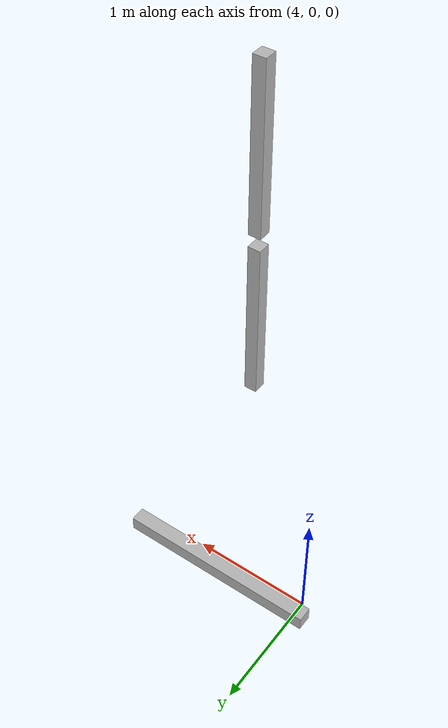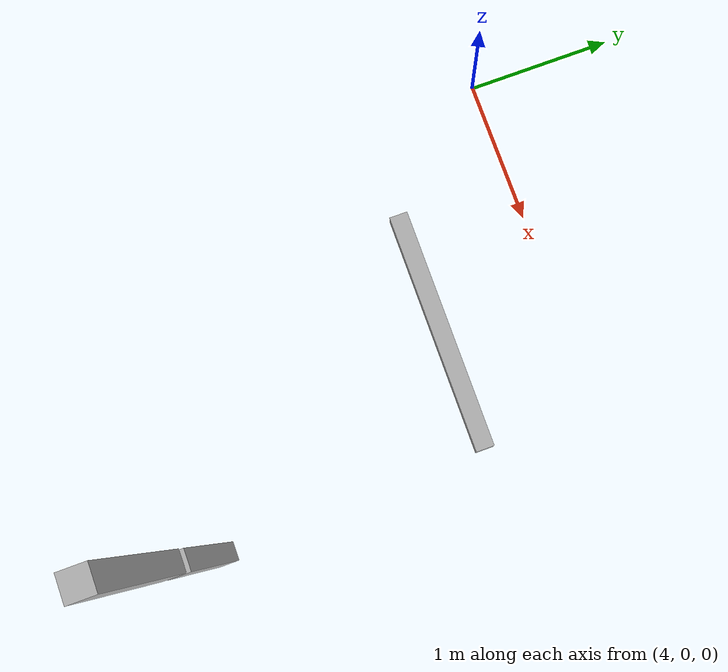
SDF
<sdf version="1.7">
 <world name="default">
  <model name="orthogonal_747_2.000.15_TS">
   <static>1</static>
   <link name="x_link_0_2_5">
    <inertial>
     <mass>1</mass>
     <inertia>
      <ixx>0.166667</ixx>
      <ixy>0</ixy>
      <ixz>0</ixz>
      <iyy>0.166667</iyy>
      <iyz>0</iyz>
      <izz>0.166667</izz>
     </inertia>
    </inertial>
    <pose>11.825 4.3 1.075 0 -0 0</pose>
    <visual name="visual_0">
     <laser_retro>428</laser_retro>
     <geometry><box><size>2 1e-06 0.15</size></box></geometry>
     <material>
      <script><name>Gazebo/Grey</name><uri>file://media/materials/scripts/gazebo.material</uri></script>
      <shader type="pixel"><normal_map>__default__</normal_map></shader>
      <ambient>0.678 0.498 0.659 1</ambient>
      <diffuse>0.7 0.7 0.7 1</diffuse>
      <specular>0.01 0.01 0.01 1</specular>
      <emissive>0 0 0 1</emissive>
     </material>
     <pose>0 -0.075 0 0 -0 0</pose>
     <transparency>1</transparency>
    </visual>
    <visual name="visual_1">
     <laser_retro>429</laser_retro>
     <geometry><box><size>2 1e-06 0.15</size></box></geometry>
     <material>
      <script><name>Gazebo/Grey</name><uri>file://media/materials/scripts/gazebo.material</uri></script>
      <shader type="pixel"><normal_map>__default__</normal_map></shader>
      <ambient>0.447 0.624 0.812 1</ambient>
      <diffuse>0.7 0.7 0.7 1</diffuse>
      <specular>0.01 0.01 0.01 1</specular>
      <emissive>0 0 0 1</emissive>
     </material>
     <pose>0 0.075 0 0 -0 0</pose>
     <transparency>1</transparency>
    </visual>
    <visual name="visual_2">
     <laser_retro>430</laser_retro>
     <geometry><box><size>2 0.15 1e-06</size></box></geometry>
     <material>
      <script><name>Gazebo/Grey</name><uri>file://media/materials/scripts/gazebo.material</uri></script>
      <shader type="pixel"><normal_map>__default__</normal_map></shader>
      <ambient>0.988 0.686 0.243 1</ambient>
      <diffuse>0.7 0.7 0.7 1</diffuse>
      <specular>0.01 0.01 0.01 1</specular>
      <emissive>0 0 0 1</emissive>
     </material>
     <pose>0 0 -0.075 0 -0 0</pose>
     <transparency>1</transparency>
    </visual>
    <visual name="visual_3">
     <laser_retro>431</laser_retro>
     <geometry><box><size>1e-06 0.15 0.15</size></box></geometry>
     <material>
      <script><name>Gazebo/Grey</name><uri>file://media/materials/scripts/gazebo.material</uri></script>
      <shader type="pixel"><normal_map>__default__</normal_map></shader>
      <ambient>0.988 0.914 0.31 1</ambient>
      <diffuse>0.7 0.7 0.7 1</diffuse>
      <specular>0.01 0.01 0.01 1</specular>
      <emissive>0 0 0 1</emissive>
     </material>
     <pose>1 0 0 0 -0 0</pose>
     <transparency>1</transparency>
    </visual>
    <visual name="visual_4">
     <laser_retro>432</laser_retro>
     <geometry><box><size>2 0.15 1e-06</size></box></geometry>
     <material>
      <script><name>Gazebo/Grey</name><uri>file://media/materials/scripts/gazebo.material</uri></script>
      <shader type="pixel"><normal_map>__default__</normal_map></shader>
      <ambient>0.937 0.161 0.161 1</ambient>
      <diffuse>0.7 0.7 0.7 1</diffuse>
      <specular>0.01 0.01 0.01 1</specular>
      <emissive>0 0 0 1</emissive>
     </material>
     <pose>0 0 0.075 0 -0 0</pose>
     <transparency>1</transparency>
    </visual>
    <visual name="visual_5">
     <laser_retro>433</laser_retro>
     <geometry><box><size>1e-06 0.15 0.15</size></box></geometry>
     <material>
      <script><name>Gazebo/Grey</name><uri>file://media/materials/scripts/gazebo.material</uri></script>
      <shader type="pixel"><normal_map>__default__</normal_map></shader>
      <ambient>0.541 0.886 0.204 1</ambient>
      <diffuse>0.7 0.7 0.7 1</diffuse>
      <specular>0.01 0.01 0.01 1</specular>
      <emissive>0 0 0 1</emissive>
     </material>
     <pose>-1 0 0 0 -0 0</pose>
     <transparency>1</transparency>
    </visual>
    <visual name="visual_texture">
     <geometry><box><size>1.9998 0.149985 0.149985</size></box></geometry>
     <material>
      <script>
       <uri>model://BASE_MODELS/simple_block_v2_textured/materials/scripts</uri>
       <uri>model://BASE_MODELS/simple_block_v2_textured/materials/textures</uri>
       <name>metal</name>
      </script>
     </material>
     <laser_retro>434</laser_retro>
    </visual>
    <collision name="collision">
     <geometry><box><size>2 0.15 0.15</size></box></geometry>
     <surface>
      <friction>
       <ode><mu>1</mu><mu2>1</mu2><fdir1>0 0 0</fdir1><slip1>0</slip1><slip2>0</slip2></ode>
       <torsional>
        <coefficient>1</coefficient>
        <patch_radius>0</patch_radius>
        <surface_radius>0</surface_radius>
        <use_patch_radius>1</use_patch_radius>
        <ode><slip>0</slip></ode>
       </torsional>
      </friction>
      <bounce><restitution_coefficient>0</restitution_coefficient><threshold>1e+06</threshold></bounce>
      <contact>
       <collide_without_contact>0</collide_without_contact>
       <collide_without_contact_bitmask>1</collide_without_contact_bitmask>
       <collide_bitmask>1</collide_bitmask>
       <ode>
        <soft_cfm>0</soft_cfm>
        <soft_erp>0.2</soft_erp>
        <kp>1e+13</kp>
        <kd>1</kd>
        <max_vel>0.01</max_vel>
        <min_depth>0</min_depth>
       </ode>
       <bullet>
        <split_impulse>1</split_impulse>
        <split_impulse_penetration_threshold>-0.01</split_impulse_penetration_threshold>
        <soft_cfm>0</soft_cfm>
        <soft_erp>0.2</soft_erp>
        <kp>1e+13</kp>
        <kd>1</kd>
       </bullet>
      </contact>
     </surface>
    </collision>
   </link>
   <link name="z_link_1_1_6">
    <inertial>
     <mass>1</mass>
     <inertia>
      <ixx>0.166667</ixx>
      <ixy>0</ixy>
      <ixz>0</ixz>
      <iyy>0.166667</iyy>
      <iyz>0</iyz>
      <izz>0.166667</izz>
     </inertia>
    </inertial>
    <pose>12.9 2.15 2.15 0 -0 0</pose>
    <visual name="visual_0">
     <laser_retro>1114</laser_retro>
     <geometry><box><size>0.15 1e-06 2</size></box></geometry>
     <material>
      <script><name>Gazebo/Grey</name><uri>file://media/materials/scripts/gazebo.material</uri></script>
      <shader type="pixel"><normal_map>__default__</normal_map></shader>
      <ambient>0.678 0.498 0.659 1</ambient>
      <diffuse>0.7 0.7 0.7 1</diffuse>
      <specular>0.01 0.01 0.01 1</specular>
      <emissive>0 0 0 1</emissive>
     </material>
     <pose>0 -0.075 0 0 -0 0</pose>
     <transparency>1</transparency>
    </visual>
    <visual name="visual_1">
     <laser_retro>1115</laser_retro>
     <geometry><box><size>0.15 1e-06 2</size></box></geometry>
     <material>
      <script><name>Gazebo/Grey</name><uri>file://media/materials/scripts/gazebo.material</uri></script>
      <shader type="pixel"><normal_map>__default__</normal_map></shader>
      <ambient>0.447 0.624 0.812 1</ambient>
      <diffuse>0.7 0.7 0.7 1</diffuse>
      <specular>0.01 0.01 0.01 1</specular>
      <emissive>0 0 0 1</emissive>
     </material>
     <pose>0 0.075 0 0 -0 0</pose>
     <transparency>1</transparency>
    </visual>
    <visual name="visual_2">
     <laser_retro>1116</laser_retro>
     <geometry><box><size>0.15 0.15 1e-06</size></box></geometry>
     <material>
      <script><name>Gazebo/Grey</name><uri>file://media/materials/scripts/gazebo.material</uri></script>
      <shader type="pixel"><normal_map>__default__</normal_map></shader>
      <ambient>0.988 0.686 0.243 1</ambient>
      <diffuse>0.7 0.7 0.7 1</diffuse>
      <specular>0.01 0.01 0.01 1</specular>
      <emissive>0 0 0 1</emissive>
     </material>
     <pose>0 0 -1 0 -0 0</pose>
     <transparency>1</transparency>
    </visual>
    <visual name="visual_3">
     <laser_retro>1117</laser_retro>
     <geometry><box><size>1e-06 0.15 2</size></box></geometry>
     <material>
      <script><name>Gazebo/Grey</name><uri>file://media/materials/scripts/gazebo.material</uri></script>
      <shader type="pixel"><normal_map>__default__</normal_map></shader>
      <ambient>0.988 0.914 0.31 1</ambient>
      <diffuse>0.7 0.7 0.7 1</diffuse>
      <specular>0.01 0.01 0.01 1</specular>
      <emissive>0 0 0 1</emissive>
     </material>
     <pose>0.075 0 0 0 -0 0</pose>
     <transparency>1</transparency>
    </visual>
    <visual name="visual_4">
     <laser_retro>1118</laser_retro>
     <geometry><box><size>0.15 0.15 1e-06</size></box></geometry>
     <material>
      <script><name>Gazebo/Grey</name><uri>file://media/materials/scripts/gazebo.material</uri></script>
      <shader type="pixel"><normal_map>__default__</normal_map></shader>
      <ambient>0.937 0.161 0.161 1</ambient>
      <diffuse>0.7 0.7 0.7 1</diffuse>
      <specular>0.01 0.01 0.01 1</specular>
      <emissive>0 0 0 1</emissive>
     </material>
     <pose>0 0 1 0 -0 0</pose>
     <transparency>1</transparency>
    </visual>
    <visual name="visual_5">
     <laser_retro>1119</laser_retro>
     <geometry><box><size>1e-06 0.15 2</size></box></geometry>
     <material>
      <script><name>Gazebo/Grey</name><uri>file://media/materials/scripts/gazebo.material</uri></script>
      <shader type="pixel"><normal_map>__default__</normal_map></shader>
      <ambient>0.541 0.886 0.204 1</ambient>
      <diffuse>0.7 0.7 0.7 1</diffuse>
      <specular>0.01 0.01 0.01 1</specular>
      <emissive>0 0 0 1</emissive>
     </material>
     <pose>-0.075 0 0 0 -0 0</pose>
     <transparency>1</transparency>
    </visual>
    <visual name="visual_texture">
     <geometry><box><size>0.149985 0.149985 1.9998</size></box></geometry>
     <material>
      <script>
       <uri>model://BASE_MODELS/simple_block_v2_textured/materials/scripts</uri>
       <uri>model://BASE_MODELS/simple_block_v2_textured/materials/textures</uri>
       <name>metal</name>
      </script>
     </material>
     <laser_retro>1120</laser_retro>
    </visual>
    <collision name="collision">
     <geometry><box><size>0.15 0.15 2</size></box></geometry>
     <surface>
      <friction>
       <ode><mu>1</mu><mu2>1</mu2><fdir1>0 0 0</fdir1><slip1>0</slip1><slip2>0</slip2></ode>
       <torsional>
        <coefficient>1</coefficient>
        <patch_radius>0</patch_radius>
        <surface_radius>0</surface_radius>
        <use_patch_radius>1</use_patch_radius>
        <ode><slip>0</slip></ode>
       </torsional>
      </friction>
      <bounce><restitution_coefficient>0</restitution_coefficient><threshold>1e+06</threshold></bounce>
      <contact>
       <collide_without_contact>0</collide_without_contact>
       <collide_without_contact_bitmask>1</collide_without_contact_bitmask>
       <collide_bitmask>1</collide_bitmask>
       <ode>
        <soft_cfm>0</soft_cfm>
        <soft_erp>0.2</soft_erp>
        <kp>1e+13</kp>
        <kd>1</kd>
        <max_vel>0.01</max_vel>
        <min_depth>0</min_depth>
       </ode>
       <bullet>
        <split_impulse>1</split_impulse>
        <split_impulse_penetration_threshold>-0.01</split_impulse_penetration_threshold>
        <soft_cfm>0</soft_cfm>
        <soft_erp>0.2</soft_erp>
        <kp>1e+13</kp>
        <kd>1</kd>
       </bullet>
      </contact>
     </surface>
    </collision>
   </link>
   <link name="z_link_2_1_6">
    <inertial>
     <mass>1</mass>
     <inertia>
      <ixx>0.166667</ixx>
      <ixy>0</ixy>
      <ixz>0</ixz>
      <iyy>0.166667</iyy>
      <iyz>0</iyz>
      <izz>0.166667</izz>
     </inertia>
    </inertial>
    <pose>12.9 2.15 4.3 0 -0 0</pose>
    <visual name="visual_0">
     <laser_retro>2017</laser_retro>
     <geometry><box><size>0.15 1e-06 2</size></box></geometry>
     <material>
      <script><name>Gazebo/Grey</name><uri>file://media/materials/scripts/gazebo.material</uri></script>
      <shader type="pixel"><normal_map>__default__</normal_map></shader>
      <ambient>0.678 0.498 0.659 1</ambient>
      <diffuse>0.7 0.7 0.7 1</diffuse>
      <specular>0.01 0.01 0.01 1</specular>
      <emissive>0 0 0 1</emissive>
     </material>
     <pose>0 -0.075 0 0 -0 0</pose>
     <transparency>1</transparency>
    </visual>
    <visual name="visual_1">
     <laser_retro>2018</laser_retro>
     <geometry><box><size>0.15 1e-06 2</size></box></geometry>
     <material>
      <script><name>Gazebo/Grey</name><uri>file://media/materials/scripts/gazebo.material</uri></script>
      <shader type="pixel"><normal_map>__default__</normal_map></shader>
      <ambient>0.447 0.624 0.812 1</ambient>
      <diffuse>0.7 0.7 0.7 1</diffuse>
      <specular>0.01 0.01 0.01 1</specular>
      <emissive>0 0 0 1</emissive>
     </material>
     <pose>0 0.075 0 0 -0 0</pose>
     <transparency>1</transparency>
    </visual>
    <visual name="visual_2">
     <laser_retro>2019</laser_retro>
     <geometry><box><size>0.15 0.15 1e-06</size></box></geometry>
     <material>
      <script><name>Gazebo/Grey</name><uri>file://media/materials/scripts/gazebo.material</uri></script>
      <shader type="pixel"><normal_map>__default__</normal_map></shader>
      <ambient>0.988 0.686 0.243 1</ambient>
      <diffuse>0.7 0.7 0.7 1</diffuse>
      <specular>0.01 0.01 0.01 1</specular>
      <emissive>0 0 0 1</emissive>
     </material>
     <pose>0 0 -1 0 -0 0</pose>
     <transparency>1</transparency>
    </visual>
    <visual name="visual_3">
     <laser_retro>2020</laser_retro>
     <geometry><box><size>1e-06 0.15 2</size></box></geometry>
     <material>
      <script><name>Gazebo/Grey</name><uri>file://media/materials/scripts/gazebo.material</uri></script>
      <shader type="pixel"><normal_map>__default__</normal_map></shader>
      <ambient>0.988 0.914 0.31 1</ambient>
      <diffuse>0.7 0.7 0.7 1</diffuse>
      <specular>0.01 0.01 0.01 1</specular>
      <emissive>0 0 0 1</emissive>
     </material>
     <pose>0.075 0 0 0 -0 0</pose>
     <transparency>1</transparency>
    </visual>
    <visual name="visual_4">
     <laser_retro>2021</laser_retro>
     <geometry><box><size>0.15 0.15 1e-06</size></box></geometry>
     <material>
      <script><name>Gazebo/Grey</name><uri>file://media/materials/scripts/gazebo.material</uri></script>
      <shader type="pixel"><normal_map>__default__</normal_map></shader>
      <ambient>0.937 0.161 0.161 1</ambient>
      <diffuse>0.7 0.7 0.7 1</diffuse>
      <specular>0.01 0.01 0.01 1</specular>
      <emissive>0 0 0 1</emissive>
     </material>
     <pose>0 0 1 0 -0 0</pose>
     <transparency>1</transparency>
    </visual>
    <visual name="visual_5">
     <laser_retro>2022</laser_retro>
     <geometry><box><size>1e-06 0.15 2</size></box></geometry>
     <material>
      <script><name>Gazebo/Grey</name><uri>file://media/materials/scripts/gazebo.material</uri></script>
      <shader type="pixel"><normal_map>__default__</normal_map></shader>
      <ambient>0.541 0.886 0.204 1</ambient>
      <diffuse>0.7 0.7 0.7 1</diffuse>
      <specular>0.01 0.01 0.01 1</specular>
      <emissive>0 0 0 1</emissive>
     </material>
     <pose>-0.075 0 0 0 -0 0</pose>
     <transparency>1</transparency>
    </visual>
    <visual name="visual_texture">
     <geometry><box><size>0.149985 0.149985 1.9998</size></box></geometry>
     <material>
      <script>
       <uri>model://BASE_MODELS/simple_block_v2_textured/materials/scripts</uri>
       <uri>model://BASE_MODELS/simple_block_v2_textured/materials/textures</uri>
       <name>metal</name>
      </script>
     </material>
     <laser_retro>2023</laser_retro>
    </visual>
    <collision name="collision">
     <geometry><box><size>0.15 0.15 2</size></box></geometry>
     <surface>
      <friction>
       <ode><mu>1</mu><mu2>1</mu2><fdir1>0 0 0</fdir1><slip1>0</slip1><slip2>0</slip2></ode>
       <torsional>
        <coefficient>1</coefficient>
        <patch_radius>0</patch_radius>
        <surface_radius>0</surface_radius>
        <use_patch_radius>1</use_patch_radius>
        <ode><slip>0</slip></ode>
       </torsional>
      </friction>
      <bounce><restitution_coefficient>0</restitution_coefficient><threshold>1e+06</threshold></bounce>
      <contact>
       <collide_without_contact>0</collide_without_contact>
       <collide_without_contact_bitmask>1</collide_without_contact_bitmask>
       <collide_bitmask>1</collide_bitmask>
       <ode>
        <soft_cfm>0</soft_cfm>
        <soft_erp>0.2</soft_erp>
        <kp>1e+13</kp>
        <kd>1</kd>
        <max_vel>0.01</max_vel>
        <min_depth>0</min_depth>
       </ode>
       <bullet>
        <split_impulse>1</split_impulse>
        <split_impulse_penetration_threshold>-0.01</split_impulse_penetration_threshold>
        <soft_cfm>0</soft_cfm>
        <soft_erp>0.2</soft_erp>
        <kp>1e+13</kp>
        <kd>1</kd>
       </bullet>
      </contact>
     </surface>
    </collision>
   </link>
   <pose>-6.47624 -5 -2.5 0 -0 0</pose>
  </model>
 </world>
</sdf>
